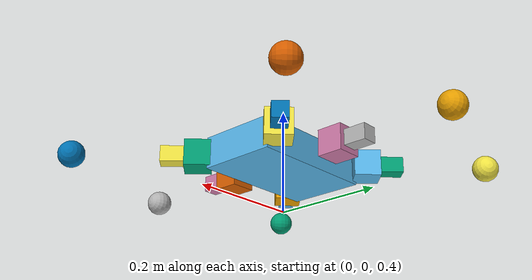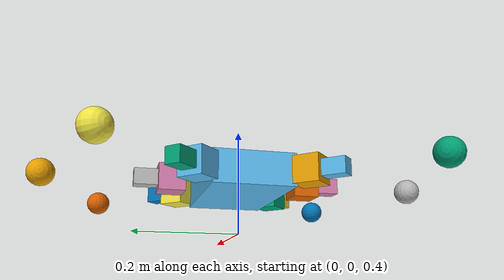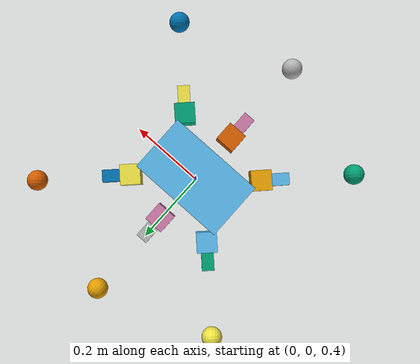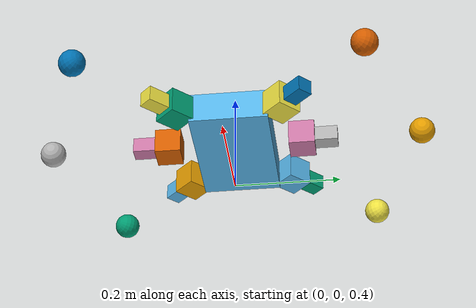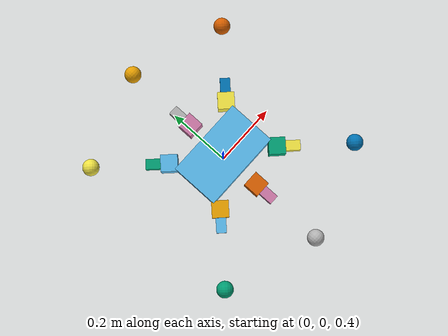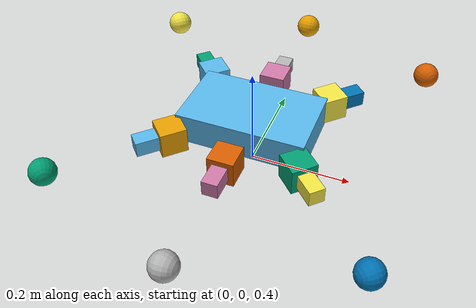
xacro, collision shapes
<?xml version="1.0" encoding="UTF-8" ?>

<robot xmlns:xacro="http://ros.org/wiki/xacro" name="Golem">

<link name="base_footprint"/>

<joint name="base_joint" type="fixed">

<parent link="base_footprint"/><child link="base_link"/>

<origin xyz="0 0 0.5" rpy="0 0 0"/> </joint>

<link name="base_link">

<visual><geometry><mesh filename="file:///root/colcon_ws/src/hexapod_description/meshes/phantomX/body.stl" scale="0.001 0.001 0.001"/></geometry></visual>

<collision><geometry><box size="0.25 0.15 0.06"/></geometry></collision>

<inertial>

<mass value="3.0"/> <inertia ixx="0.05" ixy="0" ixz="0" iyy="0.05" iyz="0" izz="0.1"/>

</inertial>

</link>

<gazebo reference="base_link"><self_collide>false</self_collide></gazebo>

<xacro:macro name="leg" params="side position x y angle">

<joint name="coxa_joint_${side}${position}" type="revolute">

<parent link="base_link"/><child link="coxa_${side}${position}"/><origin xyz="${x} ${y} 0" rpy="0 0 ${angle}"/><axis xyz="0 0 1"/>

<limit lower="-1.57" upper="1.57" effort="30.0" velocity="2.0"/>

<dynamics damping="1.0" friction="0.5"/>

</joint>

<link name="coxa_${side}${position}">

<visual><geometry><mesh filename="file:///root/colcon_ws/src/hexapod_description/meshes/phantomX/coxa.stl" scale="0.001 0.001 0.001"/></geometry></visual>

<collision><geometry><box size="0.05 0.05 0.05"/></geometry></collision>

<inertial><mass value="0.2"/><inertia ixx="0.002" ixy="0" ixz="0" iyy="0.002" iyz="0" izz="0.002"/></inertial>

</link>

<gazebo reference="coxa_${side}${position}"><self_collide>false</self_collide></gazebo>

<joint name="femur_joint_${side}${position}" type="revolute">

<origin xyz="0.029 0 0" rpy="-1.5707 0 0"/><parent link="coxa_${side}${position}"/><child link="femur_${side}${position}"/><axis xyz="0 0 1"/>

<limit lower="-1.57" upper="1.57" effort="30.0" velocity="2.0"/>

<dynamics damping="1.0" friction="0.5"/>

</joint>

<link name="femur_${side}${position}">

<visual><geometry><mesh filename="file:///root/colcon_ws/src/hexapod_description/meshes/phantomX/femur.stl" scale="0.001 0.001 0.001"/></geometry></visual>

<collision><geometry><box size="0.08 0.03 0.03"/></geometry></collision>

<inertial><mass value="0.2"/><inertia ixx="0.002" ixy="0" ixz="0" iyy="0.002" iyz="0" izz="0.002"/></inertial>

</link>

<gazebo reference="femur_${side}${position}"><self_collide>false</self_collide></gazebo>

<joint name="tibia_joint_${side}${position}" type="revolute">

<origin xyz="0.082 0 0" rpy="0 0 0"/><parent link="femur_${side}${position}"/><child link="tibia_${side}${position}"/><axis xyz="0 0 1"/>

<limit lower="-1.57" upper="1.57" effort="30.0" velocity="2.0"/>

<dynamics damping="1.0" friction="0.5"/>

</joint>

<link name="tibia_${side}${position}">

<visual><geometry><mesh filename="file:///root/colcon_ws/src/hexapod_description/meshes/phantomX/tibia.stl" scale="0.001 0.001 0.001"/></geometry></visual>

<collision>

<origin xyz="0.12 0 0" rpy="0 0 0"/> <geometry><sphere radius="0.025"/></geometry> </collision>

<inertial><mass value="0.2"/><inertia ixx="0.002" ixy="0" ixz="0" iyy="0.002" iyz="0" izz="0.002"/></inertial>

</link>

<gazebo reference="tibia_${side}${position}">

<self_collide>false</self_collide>

<mu1>2.0</mu1><mu2>2.0</mu2>

<kp>10000000.0</kp><kd>100.0</kd>

<maxVel>0.01</maxVel> <minDepth>0.005</minDepth> </gazebo>

</xacro:macro>

<xacro:leg side="R" position="F" x="0.124" y="-0.10" angle="-0.785"/>

<xacro:leg side="R" position="M" x="0.0" y="-0.13" angle="-1.57"/>

<xacro:leg side="R" position="R" x="-0.124" y="-0.10" angle="-2.35"/>

<xacro:leg side="L" position="F" x="0.124" y="0.10" angle="0.785"/>

<xacro:leg side="L" position="M" x="0.0" y="0.13" angle="1.57"/>

<xacro:leg side="L" position="R" x="-0.124" y="0.10" angle="2.35"/>

<ros2_control name="GazeboSystem" type="system">

<hardware><plugin>gazebo_ros2_control/GazeboSystem</plugin></hardware>

<xacro:macro name="j" params="n"><joint name="${n}"><command_interface name="position"/><state_interface name="position"/><state_interface name="velocity"/></joint></xacro:macro>

<xacro:j n="coxa_joint_RF"/><xacro:j n="femur_joint_RF"/><xacro:j n="tibia_joint_RF"/><xacro:j n="coxa_joint_RM"/><xacro:j n="femur_joint_RM"/><xacro:j n="tibia_joint_RM"/><xacro:j n="coxa_joint_RR"/><xacro:j n="femur_joint_RR"/><xacro:j n="tibia_joint_RR"/><xacro:j n="coxa_joint_LF"/><xacro:j n="femur_joint_LF"/><xacro:j n="tibia_joint_LF"/><xacro:j n="coxa_joint_LM"/><xacro:j n="femur_joint_LM"/><xacro:j n="tibia_joint_LM"/><xacro:j n="coxa_joint_LR"/><xacro:j n="femur_joint_LR"/><xacro:j n="tibia_joint_LR"/>

</ros2_control>

<gazebo><plugin name="gazebo_ros2_control" filename="libgazebo_ros2_control.so"><parameters>/root/colcon_ws/src/hexapod_gazebo/config/phantomx_control.yaml</parameters></plugin></gazebo>

</robot>
